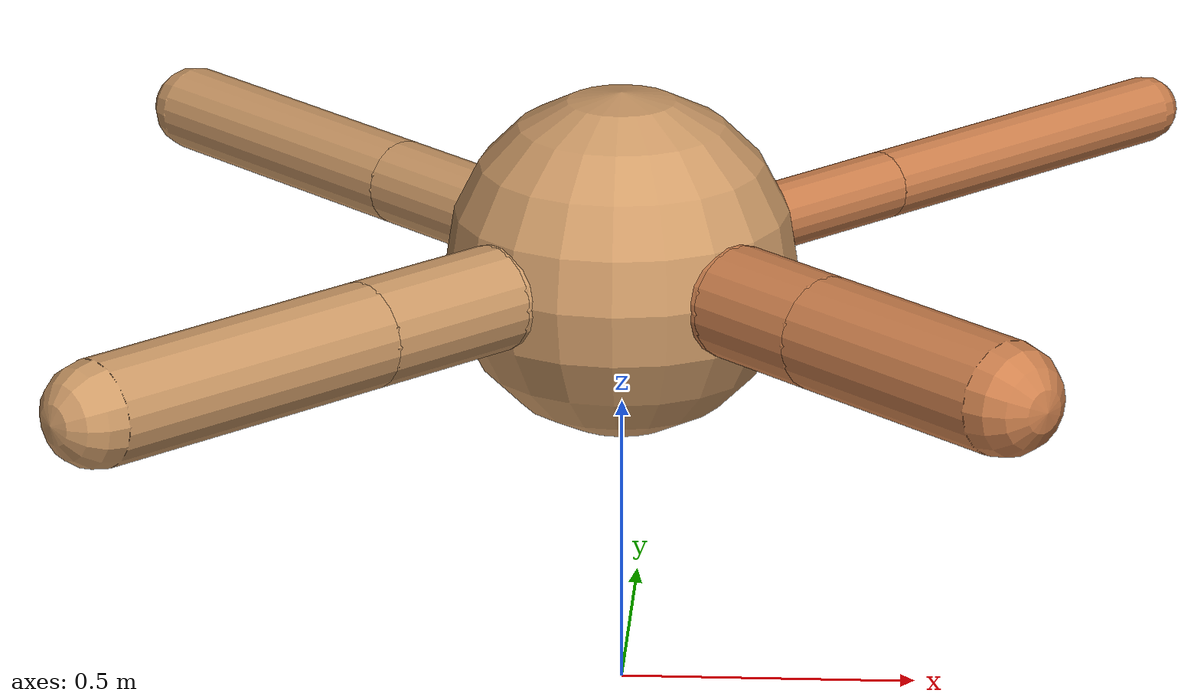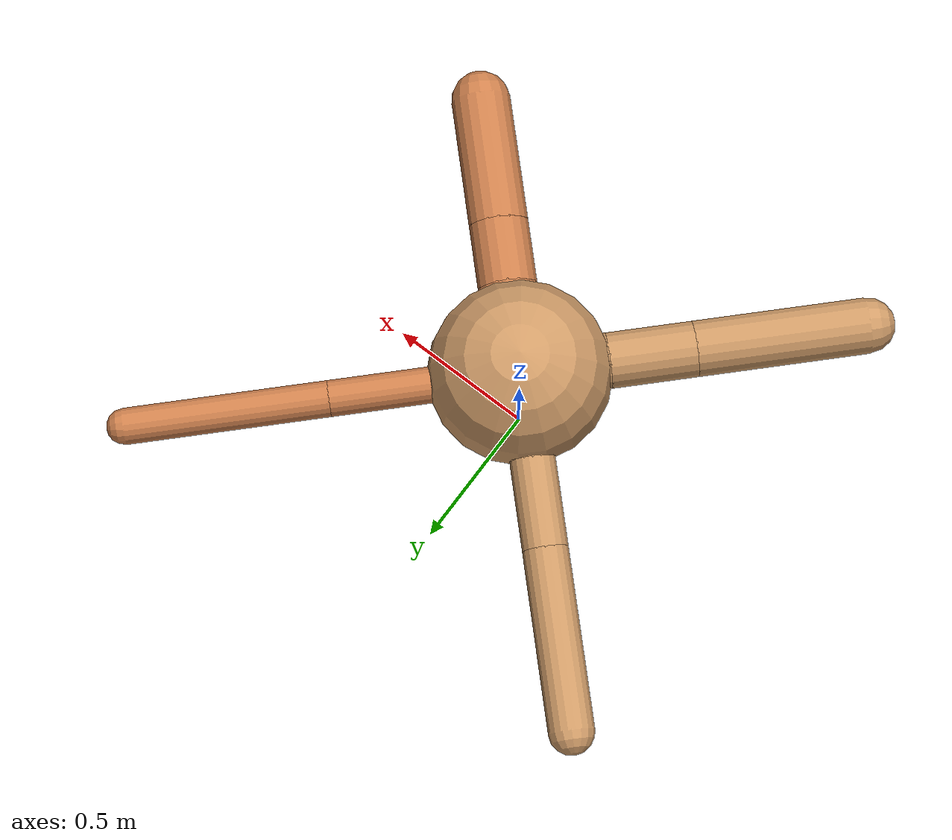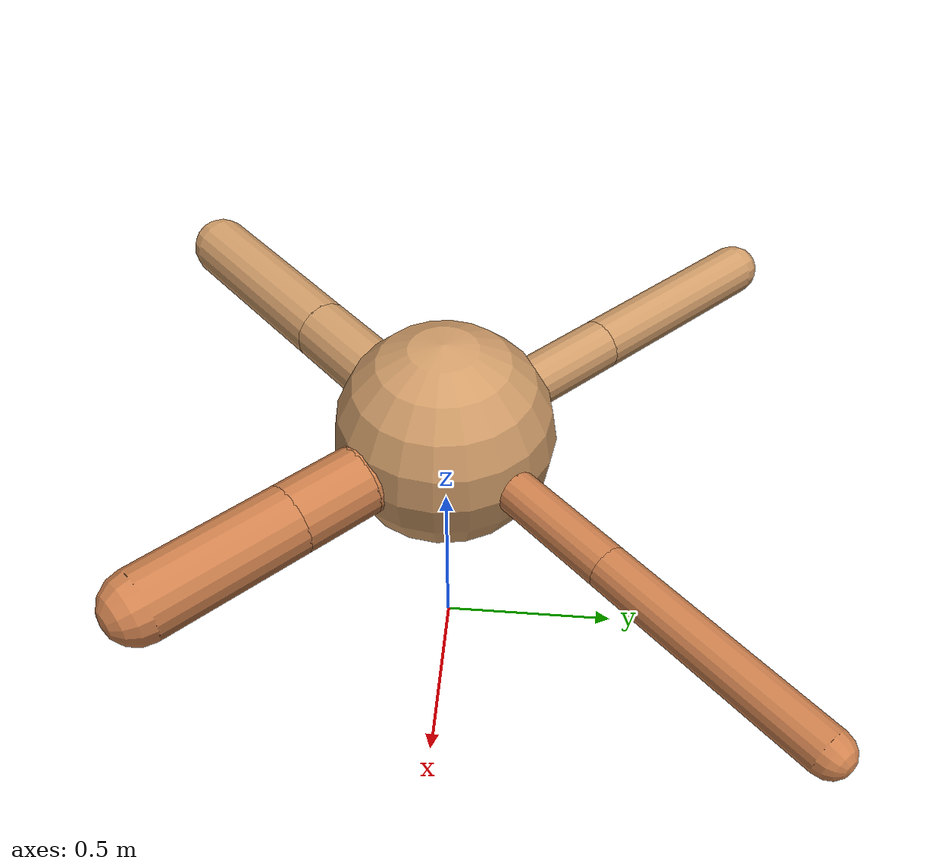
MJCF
<?xml version="1.0" ?>
<mujoco model="ant">

	<compiler angle="degree" coordinate="local" inertiafromgeom="true"/>

	<option integrator="RK4" timestep="0.01"/>

	<custom>

		<numeric data="0.0 0.0 0.55 1.0 0.0 0.0 0.0 0.0 1.0 0.0 -1.0 0.0 -1.0 0.0 1.0" name="init_qpos"/>

	</custom>

	<default>

		<joint armature="1" damping="1" limited="true"/>

		<geom conaffinity="0" condim="3" density="5.0" friction="1.5 0.1 0.1" margin="0.01" rgba="0.8 0.6 0.4 1"/>

	</default>

	<worldbody>

		<body name="torso" pos="0 0 0.75">

			<geom name="torso_geom" pos="0 0 0" size="0.2952461116168097" type="sphere"/>

			<!--joint armature="0" damping="0" limited="false" margin="0.01" name="root" pos="0 0 0" type="free"/-->

			<body name="front_left_leg" pos="0 0 0">

				<geom fromto="0 0 0 0.2 0.2 0" name="aux_1_geom" size="0.05810439312722252" type="capsule" rgba=".8 .5 .3 1"/>

				<body name="aux_1" pos="0.2 0.2 0">

					<joint axis="0 0 1" name="hip_1" pos="0.0 0.0 0.0" range="-40 40" type="hinge"/>

					<geom fromto="0 0 0 0.22964097714074835 0.22964097714074835 0" name="left_leg_geom" size="0.05810439312722252" type="capsule" rgba=".8 .5 .3 1"/>

					<body pos="0.22964097714074835 0.22964097714074835 0" name="front_left_foot">

						<joint axis="-1 1 0" name="ankle_1" pos="0.0 0.0 0.0" range="30 100" type="hinge"/>

						<geom fromto="0 0 0 0.4592819542814967 0.4592819542814967 0" name="left_ankle_geom" size="0.05810439312722252" type="capsule" rgba=".8 .5 .3 1"/>

					</body>

				</body>

			</body>

			<body name="front_right_leg" pos="0 0 0">

				<geom fromto="0 0 0 -0.2 0.2 0" name="aux_2_geom" size="0.07316831050513103" type="capsule"/>

				<body name="aux_2" pos="-0.2 0.2 0">

					<joint axis="0 0 1" name="hip_2" pos="0.0 0.0 0.0" range="-40 40" type="hinge"/>

					<geom fromto="0 0 0 -0.20273904244141672 0.20273904244141672 0" name="right_leg_geom" size="0.07316831050513103" type="capsule"/>

					<body pos="-0.20273904244141672 0.20273904244141672 0" name="front_right_foot">

						<joint axis="1 1 0" name="ankle_2" pos="0.0 0.0 0.0" range="-100 -30" type="hinge"/>

						<geom fromto="0 0 0 -0.40547808488283343 0.40547808488283343 0" name="right_ankle_geom" size="0.07316831050513103" type="capsule"/>

					</body>

				</body>

			</body>

			<body name="left_back_leg" pos="0 0 0">

				<geom fromto="0 0 0 -0.2 -0.2 0" name="aux_3_geom" size="0.08929936916321107" type="capsule"/>

				<body name="aux_3" pos="-0.2 -0.2 0">

					<joint axis="0 0 1" name="hip_3" pos="0.0 0.0 0.0" range="-40 40" type="hinge"/>

					<geom fromto="0 0 0 -0.1957632743759139 -0.1957632743759139 0" name="back_leg_geom" size="0.08929936916321107" type="capsule"/>

					<body pos="-0.1957632743759139 -0.1957632743759139 0" name="left_back_foot">

						<joint axis="-1 1 0" name="ankle_3" pos="0.0 0.0 0.0" range="-100 -30" type="hinge"/>

						<geom fromto="0 0 0 -0.3915265487518278 -0.3915265487518278 0" name="third_ankle_geom" size="0.08929936916321107" type="capsule"/>

					</body>

				</body>

			</body>

			<body name="right_back_leg" pos="0 0 0">

				<geom fromto="0 0 0 0.2 -0.2 0" name="aux_4_geom" size="0.09569077527488565" type="capsule" rgba=".8 .5 .3 1"/>

				<body name="aux_4" pos="0.2 -0.2 0">

					<joint axis="0 0 1" name="hip_4" pos="0.0 0.0 0.0" range="-40 40" type="hinge"/>

					<geom fromto="0 0 0 0.14772091670574747 -0.14772091670574747 0" name="rightback_leg_geom" size="0.09569077527488565" type="capsule" rgba=".8 .5 .3 1"/>

					<body pos="0.14772091670574747 -0.14772091670574747 0" name="right_back_foot">

						<joint axis="1 1 0" name="ankle_4" pos="0.0 0.0 0.0" range="30 100" type="hinge"/>

						<geom fromto="0 0 0 0.29544183341149494 -0.29544183341149494 0" name="fourth_ankle_geom" size="0.09569077527488565" type="capsule" rgba=".8 .5 .3 1"/>

					</body>

				</body>

			</body>

		</body>

	</worldbody>

	<actuator>

		<motor ctrllimited="true" ctrlrange="-1.0 1.0" joint="hip_4" gear="150"/>

		<motor ctrllimited="true" ctrlrange="-1.0 1.0" joint="ankle_4" gear="150"/>

		<motor ctrllimited="true" ctrlrange="-1.0 1.0" joint="hip_1" gear="150"/>

		<motor ctrllimited="true" ctrlrange="-1.0 1.0" joint="ankle_1" gear="150"/>

		<motor ctrllimited="true" ctrlrange="-1.0 1.0" joint="hip_2" gear="150"/>

		<motor ctrllimited="true" ctrlrange="-1.0 1.0" joint="ankle_2" gear="150"/>

		<motor ctrllimited="true" ctrlrange="-1.0 1.0" joint="hip_3" gear="150"/>

		<motor ctrllimited="true" ctrlrange="-1.0 1.0" joint="ankle_3" gear="150"/>

	</actuator>

</mujoco>
